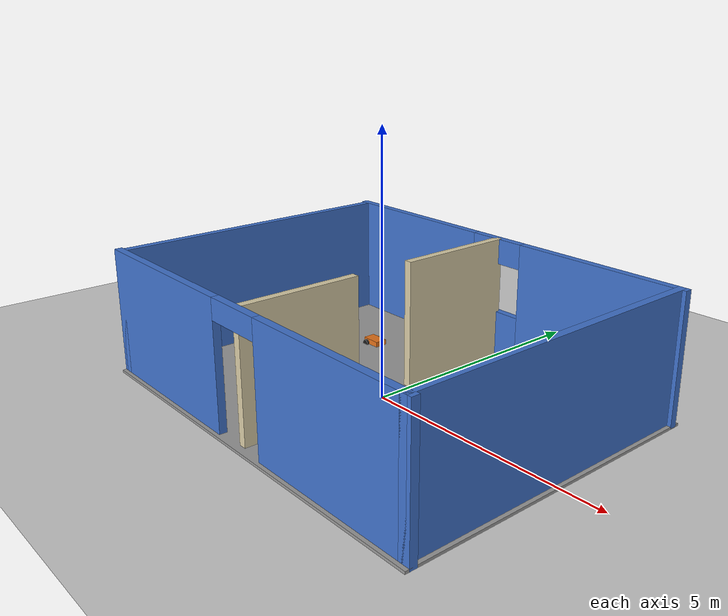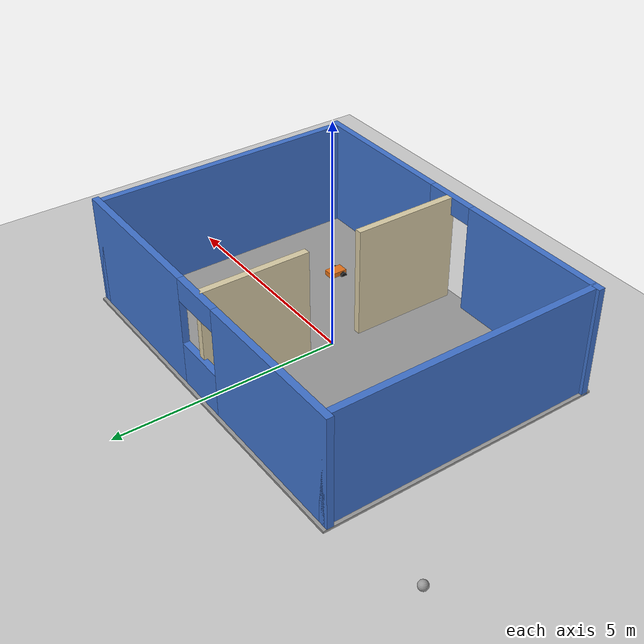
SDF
<sdf version="1.6">
 <world name="my_world">
  <light name="sun" type="directional">
   <pose>0 0 10 0 -0 0</pose>
   <diffuse>0.8 0.8 0.8 1</diffuse>
   <specular>0.2 0.2 0.2 1</specular>
   <attenuation>
    <range>1000</range>
    <constant>0.9</constant>
    <linear>0.01</linear>
    <quadratic>0.001</quadratic>
   </attenuation>
   <direction>-0.5 0.1 -0.9</direction>
   <spot><inner_angle>0</inner_angle><outer_angle>0</outer_angle><falloff>0</falloff></spot>
  </light>
  <include><uri>model://ground_plane</uri></include>
  <include><uri>model://my_building</uri></include>
  <include><uri>model://my_bot</uri><name>my_bot_1</name><pose>-2 1.5 0 0 0 0</pose></include>
  <include><uri>model://my_bot</uri><name>my_bot_2</name><pose>2 -1.5 0 0 0 1.5707</pose></include>
  <include><uri>model://my_ball</uri><pose>-6.02926 2.53512 0.1 0 0 0</pose></include>
 </world>
</sdf>

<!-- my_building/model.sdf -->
<sdf version="1.6">
  <model name="my_building">
    <static>true</static>
    <link name="Floor">
      <pose>0 0 0.025 0 0 0</pose>
      <collision name="c">
        <geometry><box><size>8.3 6.3 0.05</size></box></geometry>
      </collision>
      <visual name="v">
        <geometry><box><size>8.3 6.3 0.05</size></box></geometry>
        <material><ambient>0.6 0.6 0.6 1</ambient><diffuse>0.6 0.6 0.6 1</diffuse></material>
      </visual>
    </link>
    <link name="Wall_N_left">
      <pose>-2.375 3 1.25 0 0 0</pose>
      <collision name="c">
        <geometry><box><size>3.55 0.15 2.5</size></box></geometry>
      </collision>
      <visual name="v">
        <geometry><box><size>3.55 0.15 2.5</size></box></geometry>
        <material><ambient>0.25 0.45 0.8 1</ambient><diffuse>0.25 0.45 0.8 1</diffuse></material>
      </visual>
    </link>
    <link name="Wall_N_right">
      <pose>2.375 3 1.25 0 0 0</pose>
      <collision name="c">
        <geometry><box><size>3.55 0.15 2.5</size></box></geometry>
      </collision>
      <visual name="v">
        <geometry><box><size>3.55 0.15 2.5</size></box></geometry>
        <material><ambient>0.25 0.45 0.8 1</ambient><diffuse>0.25 0.45 0.8 1</diffuse></material>
      </visual>
    </link>
    <link name="Wall_N_sill">
      <pose>0 3 0.5 0 0 0</pose>
      <collision name="c">
        <geometry><box><size>1.2 0.15 1.0</size></box></geometry>
      </collision>
      <visual name="v">
        <geometry><box><size>1.2 0.15 1.0</size></box></geometry>
        <material><ambient>0.25 0.45 0.8 1</ambient><diffuse>0.25 0.45 0.8 1</diffuse></material>
      </visual>
    </link>
    <link name="Wall_N_lintel">
      <pose>0 3 2.25 0 0 0</pose>
      <collision name="c">
        <geometry><box><size>1.2 0.15 0.5</size></box></geometry>
      </collision>
      <visual name="v">
        <geometry><box><size>1.2 0.15 0.5</size></box></geometry>
        <material><ambient>0.25 0.45 0.8 1</ambient><diffuse>0.25 0.45 0.8 1</diffuse></material>
      </visual>
    </link>
    <link name="Wall_S_left">
      <pose>-2.375 -3 1.25 0 0 0</pose>
      <collision name="c">
        <geometry><box><size>3.55 0.15 2.5</size></box></geometry>
      </collision>
      <visual name="v">
        <geometry><box><size>3.55 0.15 2.5</size></box></geometry>
        <material><ambient>0.25 0.45 0.8 1</ambient><diffuse>0.25 0.45 0.8 1</diffuse></material>
      </visual>
    </link>
    <link name="Wall_S_right">
      <pose>2.375 -3 1.25 0 0 0</pose>
      <collision name="c">
        <geometry><box><size>3.55 0.15 2.5</size></box></geometry>
      </collision>
      <visual name="v">
        <geometry><box><size>3.55 0.15 2.5</size></box></geometry>
        <material><ambient>0.25 0.45 0.8 1</ambient><diffuse>0.25 0.45 0.8 1</diffuse></material>
      </visual>
    </link>
    <link name="Wall_S_lintel">
      <pose>0 -3 2.3 0 0 0</pose>
      <collision name="c">
        <geometry><box><size>1.2 0.15 0.4</size></box></geometry>
      </collision>
      <visual name="v">
        <geometry><box><size>1.2 0.15 0.4</size></box></geometry>
        <material><ambient>0.25 0.45 0.8 1</ambient><diffuse>0.25 0.45 0.8 1</diffuse></material>
      </visual>
    </link>
    <link name="Wall_E">
      <pose>4 0 1.25 0 0 0</pose>
      <collision name="c">
        <geometry><box><size>0.15 6.15 2.5</size></box></geometry>
      </collision>
      <visual name="v">
        <geometry><box><size>0.15 6.15 2.5</size></box></geometry>
        <material><ambient>0.25 0.45 0.8 1</ambient><diffuse>0.25 0.45 0.8 1</diffuse></material>
      </visual>
    </link>
    <link name="Wall_W">
      <pose>-4 0 1.25 0 0 0</pose>
      <collision name="c">
        <geometry><box><size>0.15 6.15 2.5</size></box></geometry>
      </collision>
      <visual name="v">
        <geometry><box><size>0.15 6.15 2.5</size></box></geometry>
        <material><ambient>0.25 0.45 0.8 1</ambient><diffuse>0.25 0.45 0.8 1</diffuse></material>
      </visual>
    </link>
    <link name="Wall_D_north">
      <pose>0 1.8 1.25 0 0 0</pose>
      <collision name="c">
        <geometry><box><size>0.15 2.4 2.5</size></box></geometry>
      </collision>
      <visual name="v">
        <geometry><box><size>0.15 2.4 2.5</size></box></geometry>
        <material><ambient>0.85 0.8 0.65 1</ambient><diffuse>0.85 0.8 0.65 1</diffuse></material>
      </visual>
    </link>
    <link name="Wall_D_south">
      <pose>0 -1.8 1.25 0 0 0</pose>
      <collision name="c">
        <geometry><box><size>0.15 2.4 2.5</size></box></geometry>
      </collision>
      <visual name="v">
        <geometry><box><size>0.15 2.4 2.5</size></box></geometry>
        <material><ambient>0.85 0.8 0.65 1</ambient><diffuse>0.85 0.8 0.65 1</diffuse></material>
      </visual>
    </link>
  </model>
</sdf>

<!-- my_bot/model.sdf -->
<sdf version="1.6">
  <model name="my_bot">
    <link name="chassis">
      <pose>0 0 0.1 0 0 0</pose>
      <inertial>
        <mass>2.0</mass>
        <inertia><ixx>0.02</ixx><iyy>0.03</iyy><izz>0.04</izz><ixy>0</ixy><ixz>0</ixz><iyz>0</iyz></inertia>
      </inertial>
      <collision name="c">
        <geometry><box><size>0.4 0.25 0.12</size></box></geometry>
      </collision>
      <visual name="v">
        <geometry><box><size>0.4 0.25 0.12</size></box></geometry>
        <material><ambient>0.9 0.45 0.1 1</ambient><diffuse>0.9 0.45 0.1 1</diffuse></material>
      </visual>
    </link>

    <link name="left_wheel">
      <pose>-0.1 0.16 0.07 1.5707 0 0</pose>
      <inertial>
        <mass>0.3</mass>
        <inertia><ixx>0.001</ixx><iyy>0.001</iyy><izz>0.001</izz><ixy>0</ixy><ixz>0</ixz><iyz>0</iyz></inertia>
      </inertial>
      <collision name="c">
        <geometry><cylinder><radius>0.07</radius><length>0.05</length></cylinder></geometry>
      </collision>
      <visual name="v">
        <geometry><cylinder><radius>0.07</radius><length>0.05</length></cylinder></geometry>
        <material><ambient>0.1 0.1 0.1 1</ambient><diffuse>0.1 0.1 0.1 1</diffuse></material>
      </visual>
    </link>

    <link name="right_wheel">
      <pose>-0.1 -0.16 0.07 1.5707 0 0</pose>
      <inertial>
        <mass>0.3</mass>
        <inertia><ixx>0.001</ixx><iyy>0.001</iyy><izz>0.001</izz><ixy>0</ixy><ixz>0</ixz><iyz>0</iyz></inertia>
      </inertial>
      <collision name="c">
        <geometry><cylinder><radius>0.07</radius><length>0.05</length></cylinder></geometry>
      </collision>
      <visual name="v">
        <geometry><cylinder><radius>0.07</radius><length>0.05</length></cylinder></geometry>
        <material><ambient>0.1 0.1 0.1 1</ambient><diffuse>0.1 0.1 0.1 1</diffuse></material>
      </visual>
    </link>

    <link name="caster">
      <pose>0.15 0 0.05 0 0 0</pose>
      <inertial>
        <mass>0.1</mass>
        <inertia><ixx>0.0001</ixx><iyy>0.0001</iyy><izz>0.0001</izz><ixy>0</ixy><ixz>0</ixz><iyz>0</iyz></inertia>
      </inertial>
      <collision name="c">
        <geometry><sphere><radius>0.05</radius></sphere></geometry>
        <surface><friction><ode><mu>0</mu><mu2>0</mu2></ode></friction></surface>
      </collision>
      <visual name="v">
        <geometry><sphere><radius>0.05</radius></sphere></geometry>
        <material><ambient>0.1 0.1 0.1 1</ambient><diffuse>0.1 0.1 0.1 1</diffuse></material>
      </visual>
    </link>

    <joint name="left_wheel_joint" type="revolute">
      <parent>chassis</parent>
      <child>left_wheel</child>
      <axis>
        <xyz>0 1 0</xyz>
        <limit><lower>-1e16</lower><upper>1e16</upper></limit>
      </axis>
    </joint>

    <joint name="right_wheel_joint" type="revolute">
      <parent>chassis</parent>
      <child>right_wheel</child>
      <axis>
        <xyz>0 1 0</xyz>
        <limit><lower>-1e16</lower><upper>1e16</upper></limit>
      </axis>
    </joint>

    <joint name="caster_joint" type="fixed">
      <parent>chassis</parent>
      <child>caster</child>
    </joint>
  </model>
</sdf>

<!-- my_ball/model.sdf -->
<sdf version="1.6">
  <model name="my_ball">
    <link name='link_0'>
      <inertial>
        <mass>0.1</mass>
        <inertia>
          <ixx>0.01</ixx>
          <ixy>0</ixy>
          <ixz>0</ixz>
          <iyy>0.01</iyy>
          <iyz>0</iyz>
          <izz>0.01</izz>
        </inertia>
        <pose>0 0 0 0 -0 0</pose>
      </inertial>
      <pose>-0 -0 0 0 -0 0</pose>
      <gravity>1</gravity>
      <self_collide>0</self_collide>
      <kinematic>0</kinematic>
      <enable_wind>0</enable_wind>
      <visual name='visual'>
        <pose>0 0 0 0 -0 0</pose>
        <geometry>
          <sphere>
            <radius>0.1</radius>
          </sphere>
        </geometry>
        <material>
          <lighting>1</lighting>
          <script>
            <uri>file://media/materials/scripts/gazebo.material</uri>
            <name>Gazebo/Grey</name>
          </script>
          <shader type='pixel'>
            <normal_map>__default__</normal_map>
          </shader>
          <ambient>1 1 1 1</ambient>
          <diffuse>1 1 1 1</diffuse>
          <specular>1 1 1 1</specular>
          <emissive>1 1 1 1</emissive>
        </material>
        <transparency>0</transparency>
        <cast_shadows>1</cast_shadows>
      </visual>
      <collision name='collision'>
        <laser_retro>0</laser_retro>
        <max_contacts>10</max_contacts>
        <pose>0 0 0 0 -0 0</pose>
        <geometry>
          <sphere>
            <radius>0.1</radius>
          </sphere>
        </geometry>
        <surface>
          <friction>
            <ode>
              <mu>1</mu>
              <mu2>1</mu2>
              <fdir1>0 0 0</fdir1>
              <slip1>0</slip1>
              <slip2>0</slip2>
            </ode>
            <torsional>
              <coefficient>1</coefficient>
              <patch_radius>0</patch_radius>
              <surface_radius>0</surface_radius>
              <use_patch_radius>1</use_patch_radius>
              <ode>
                <slip>0</slip>
              </ode>
            </torsional>
          </friction>
          <bounce>
            <restitution_coefficient>0</restitution_coefficient>
            <threshold>1e+06</threshold>
          </bounce>
          <contact>
            <collide_without_contact>0</collide_without_contact>
            <collide_without_contact_bitmask>1</collide_without_contact_bitmask>
            <collide_bitmask>1</collide_bitmask>
            <ode>
              <soft_cfm>0</soft_cfm>
              <soft_erp>0.2</soft_erp>
              <kp>1e+13</kp>
              <kd>1</kd>
              <max_vel>0.01</max_vel>
              <min_depth>0</min_depth>
            </ode>
            <bullet>
              <split_impulse>1</split_impulse>
              <split_impulse_penetration_threshold>-0.01</split_impulse_penetration_threshold>
              <soft_cfm>0</soft_cfm>
              <soft_erp>0.2</soft_erp>
              <kp>1e+13</kp>
              <kd>1</kd>
            </bullet>
          </contact>
        </surface>
      </collision>
    </link>
    <static>0</static>
    <allow_auto_disable>1</allow_auto_disable>
    <pose>-6.02926 2.53512 0 0 -0 0</pose>
  </model>
</sdf>
